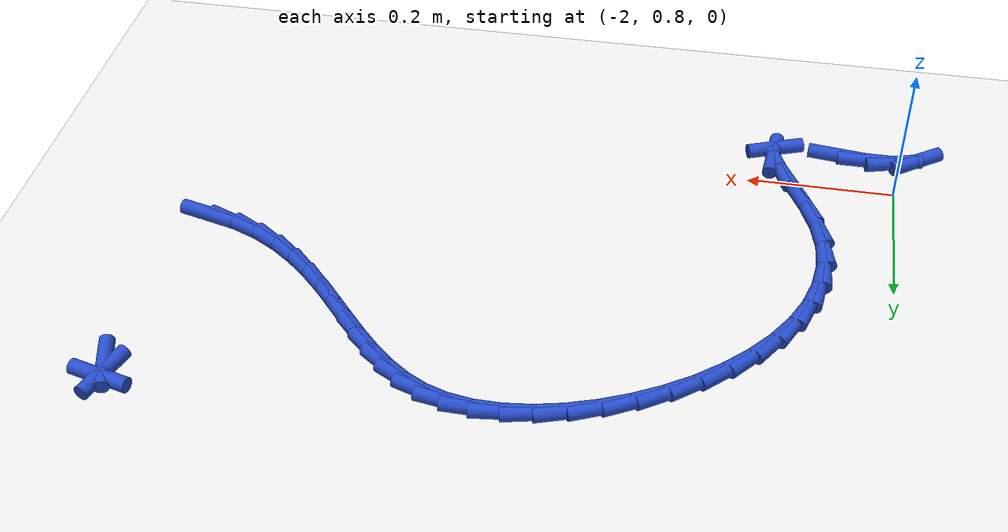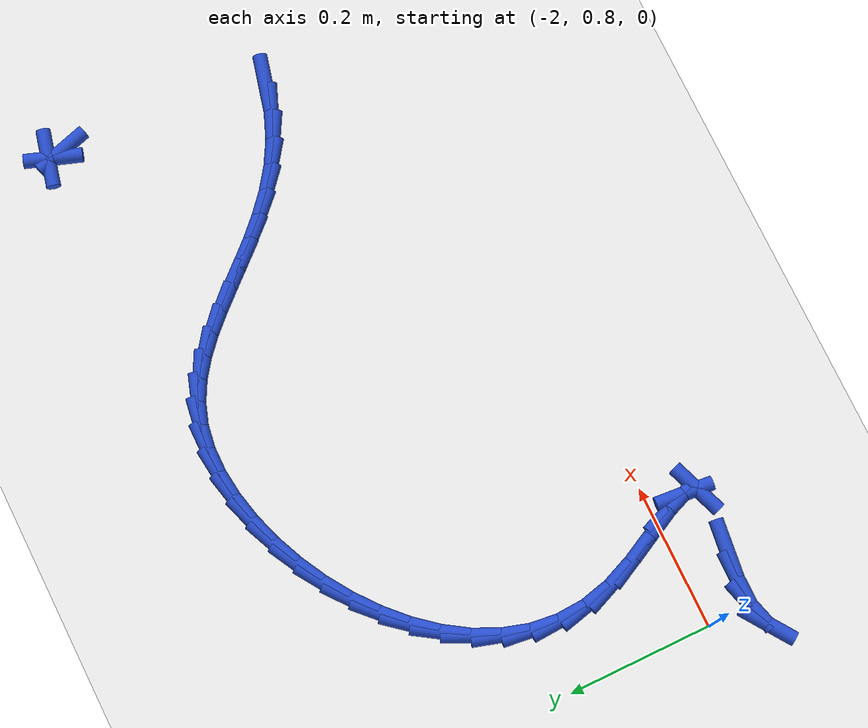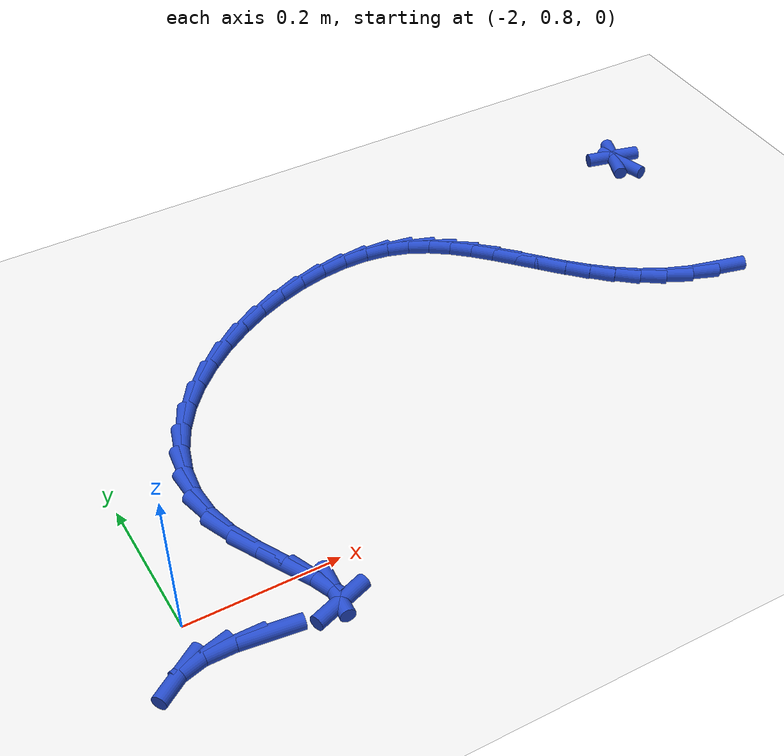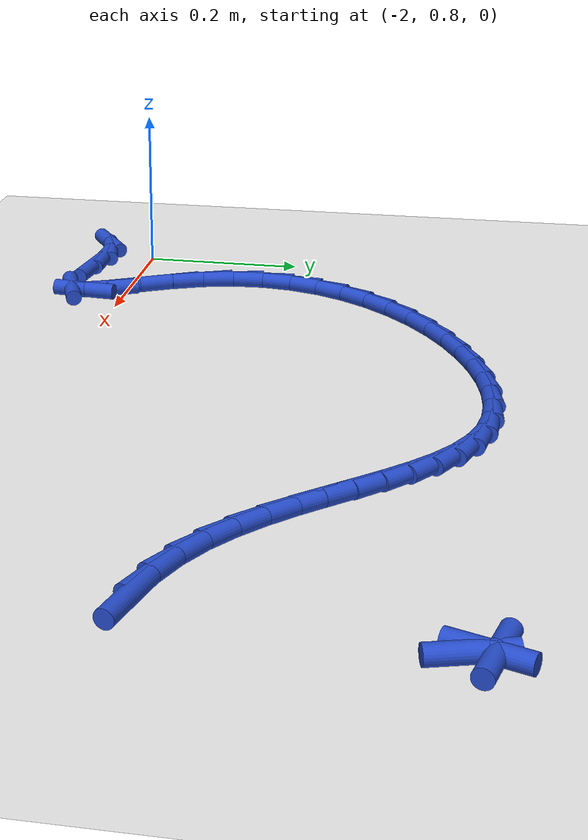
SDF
<sdf version="1.6">
 <world name="default">
  <model name="ground_plane">
   <static>1</static>
   <link name="link">
    <collision name="collision">
     <geometry><plane><normal>0 0 1</normal><size>100 100</size></plane></geometry>
     <surface><friction><ode><mu>100</mu><mu2>50</mu2></ode></friction></surface>
    </collision>
    <visual name="visual">
     <cast_shadows>0</cast_shadows>
     <geometry><plane><normal>0 0 1</normal><size>100 100</size></plane></geometry>
     <material>
      <script><uri>file://media/materials/scripts/gazebo.material</uri><name>Gazebo/WhiteGlow</name></script>
     </material>
    </visual>
   </link>
  </model>
  <model name="line">
   <link name="link_52">
    <pose>-1.0542694478184942 1.2919061636546518 0.01 0 1.57 -1.2856263800954082</pose>
    <collision name="collision">
     <geometry><cylinder><radius>0.01</radius><length>0.08</length></cylinder></geometry>
    </collision>
    <visual name="visual">
     <material>
      <script><name>Gazebo/Blue</name><uri>file://media/materials/scripts/gazebo.material</uri></script>
     </material>
     <geometry><cylinder><radius>0.01</radius><length>0.08</length></cylinder></geometry>
    </visual>
   </link>
   <link name="link_53">
    <pose>-1.0583603405042403 1.3058606275869478 0.01 0 1.57 1.238142314369494</pose>
    <collision name="collision">
     <geometry><cylinder><radius>0.01</radius><length>0.08</length></cylinder></geometry>
    </collision>
    <visual name="visual">
     <material>
      <script><name>Gazebo/Blue</name><uri>file://media/materials/scripts/gazebo.material</uri></script>
     </material>
     <geometry><cylinder><radius>0.01</radius><length>0.08</length></cylinder></geometry>
    </visual>
   </link>
   <link name="link_54">
    <pose>-1.0561419411248767 1.3122815959414038 0.01 0 1.57 -0.24299462795347448</pose>
    <collision name="collision">
     <geometry><cylinder><radius>0.01</radius><length>0.08</length></cylinder></geometry>
    </collision>
    <visual name="visual">
     <material>
      <script><name>Gazebo/Blue</name><uri>file://media/materials/scripts/gazebo.material</uri></script>
     </material>
     <geometry><cylinder><radius>0.01</radius><length>0.08</length></cylinder></geometry>
    </visual>
   </link>
   <link name="link_70">
    <pose>-1.0885000211217233 1.0052487129784953 0.01 0 1.57 -0.2482110267522975</pose>
    <collision name="collision">
     <geometry><cylinder><radius>0.01</radius><length>0.08</length></cylinder></geometry>
    </collision>
    <visual name="visual">
     <material>
      <script><name>Gazebo/Blue</name><uri>file://media/materials/scripts/gazebo.material</uri></script>
     </material>
     <geometry><cylinder><radius>0.01</radius><length>0.08</length></cylinder></geometry>
    </visual>
   </link>
   <link name="link_71">
    <pose>-1.1281726500950469 1.015303232024965 0.01 0 1.57 -0.3822972875821599</pose>
    <collision name="collision">
     <geometry><cylinder><radius>0.01</radius><length>0.08</length></cylinder></geometry>
    </collision>
    <visual name="visual">
     <material>
      <script><name>Gazebo/Blue</name><uri>file://media/materials/scripts/gazebo.material</uri></script>
     </material>
     <geometry><cylinder><radius>0.01</radius><length>0.08</length></cylinder></geometry>
    </visual>
   </link>
   <link name="link_72">
    <pose>-1.1641147867218438 1.0297548084962052 0.01 0 1.57 -0.5119892710026104</pose>
    <collision name="collision">
     <geometry><cylinder><radius>0.01</radius><length>0.08</length></cylinder></geometry>
    </collision>
    <visual name="visual">
     <material>
      <script><name>Gazebo/Blue</name><uri>file://media/materials/scripts/gazebo.material</uri></script>
     </material>
     <geometry><cylinder><radius>0.01</radius><length>0.08</length></cylinder></geometry>
    </visual>
   </link>
   <link name="link_73">
    <pose>-1.1964607025708682 1.0479323497882465 0.01 0 1.57 -0.6253092240364163</pose>
    <collision name="collision">
     <geometry><cylinder><radius>0.01</radius><length>0.08</length></cylinder></geometry>
    </collision>
    <visual name="visual">
     <material>
      <script><name>Gazebo/Blue</name><uri>file://media/materials/scripts/gazebo.material</uri></script>
     </material>
     <geometry><cylinder><radius>0.01</radius><length>0.08</length></cylinder></geometry>
    </visual>
   </link>
   <link name="link_74">
    <pose>-1.225771760342248 1.0690936066867371 0.01 0 1.57 -0.7171361642608705</pose>
    <collision name="collision">
     <geometry><cylinder><radius>0.01</radius><length>0.08</length></cylinder></geometry>
    </collision>
    <visual name="visual">
     <material>
      <script><name>Gazebo/Blue</name><uri>file://media/materials/scripts/gazebo.material</uri></script>
     </material>
     <geometry><cylinder><radius>0.01</radius><length>0.08</length></cylinder></geometry>
    </visual>
   </link>
   <link name="link_75">
    <pose>-1.25260932273611 1.0924963299773243 0.01 0 1.57 -0.7849267508723177</pose>
    <collision name="collision">
     <geometry><cylinder><radius>0.01</radius><length>0.08</length></cylinder></geometry>
    </collision>
    <visual name="visual">
     <material>
      <script><name>Gazebo/Blue</name><uri>file://media/materials/scripts/gazebo.material</uri></script>
     </material>
     <geometry><cylinder><radius>0.01</radius><length>0.08</length></cylinder></geometry>
    </visual>
   </link>
   <link name="link_76">
    <pose>-1.2775347524525806 1.1173982704456555 0.01 0 1.57 -0.8277067956092622</pose>
    <collision name="collision">
     <geometry><cylinder><radius>0.01</radius><length>0.08</length></cylinder></geometry>
    </collision>
    <visual name="visual">
     <material>
      <script><name>Gazebo/Blue</name><uri>file://media/materials/scripts/gazebo.material</uri></script>
     </material>
     <geometry><cylinder><radius>0.01</radius><length>0.08</length></cylinder></geometry>
    </visual>
   </link>
   <link name="link_77">
    <pose>-1.3011094121917877 1.1430571788773782 0.01 0 1.57 -0.8449323806353404</pose>
    <collision name="collision">
     <geometry><cylinder><radius>0.01</radius><length>0.08</length></cylinder></geometry>
    </collision>
    <visual name="visual">
     <material>
      <script><name>Gazebo/Blue</name><uri>file://media/materials/scripts/gazebo.material</uri></script>
     </material>
     <geometry><cylinder><radius>0.01</radius><length>0.08</length></cylinder></geometry>
    </visual>
   </link>
   <link name="link_78">
    <pose>-1.3238946646538583 1.16873080605814 0.01 0 1.57 -0.8356447323193349</pose>
    <collision name="collision">
     <geometry><cylinder><radius>0.01</radius><length>0.08</length></cylinder></geometry>
    </collision>
    <visual name="visual">
     <material>
      <script><name>Gazebo/Blue</name><uri>file://media/materials/scripts/gazebo.material</uri></script>
     </material>
     <geometry><cylinder><radius>0.01</radius><length>0.08</length></cylinder></geometry>
    </visual>
   </link>
   <link name="link_79">
    <pose>-1.3464518725389194 1.193676902773588 0.01 0 1.57 -0.7980313259196378</pose>
    <collision name="collision">
     <geometry><cylinder><radius>0.01</radius><length>0.08</length></cylinder></geometry>
    </collision>
    <visual name="visual">
     <material>
      <script><name>Gazebo/Blue</name><uri>file://media/materials/scripts/gazebo.material</uri></script>
     </material>
     <geometry><cylinder><radius>0.01</radius><length>0.08</length></cylinder></geometry>
    </visual>
   </link>
   <link name="link_80">
    <pose>-1.369342398547098 1.2171532198093704 0.01 0 1.57 -0.7294975968443765</pose>
    <collision name="collision">
     <geometry><cylinder><radius>0.01</radius><length>0.08</length></cylinder></geometry>
    </collision>
    <visual name="visual">
     <material>
      <script><name>Gazebo/Blue</name><uri>file://media/materials/scripts/gazebo.material</uri></script>
     </material>
     <geometry><cylinder><radius>0.01</radius><length>0.08</length></cylinder></geometry>
    </visual>
   </link>
   <link name="link_81">
    <pose>-1.393127605378521 1.2384175079511337 0.01 0 1.57 -0.6275705124526488</pose>
    <collision name="collision">
     <geometry><cylinder><radius>0.01</radius><length>0.08</length></cylinder></geometry>
    </collision>
    <visual name="visual">
     <material>
      <script><name>Gazebo/Blue</name><uri>file://media/materials/scripts/gazebo.material</uri></script>
     </material>
     <geometry><cylinder><radius>0.01</radius><length>0.08</length></cylinder></geometry>
    </visual>
   </link>
   <link name="link_82">
    <pose>-1.4183688557333165 1.2567275179845263 0.01 0 1.57 -0.49211216224122334</pose>
    <collision name="collision">
     <geometry><cylinder><radius>0.01</radius><length>0.08</length></cylinder></geometry>
    </collision>
    <visual name="visual">
     <material>
      <script><name>Gazebo/Blue</name><uri>file://media/materials/scripts/gazebo.material</uri></script>
     </material>
     <geometry><cylinder><radius>0.01</radius><length>0.08</length></cylinder></geometry>
    </visual>
   </link>
   <link name="link_83">
    <pose>-1.4456275123116111 1.271341000695195 0.01 0 1.57 -0.32864731974328726</pose>
    <collision name="collision">
     <geometry><cylinder><radius>0.01</radius><length>0.08</length></cylinder></geometry>
    </collision>
    <visual name="visual">
     <material>
      <script><name>Gazebo/Blue</name><uri>file://media/materials/scripts/gazebo.material</uri></script>
     </material>
     <geometry><cylinder><radius>0.01</radius><length>0.08</length></cylinder></geometry>
    </visual>
   </link>
   <link name="link_84">
    <pose>-1.4754646967463991 1.2815159038398565 0.01 0 1.57 -0.15827107035254795</pose>
    <collision name="collision">
     <geometry><cylinder><radius>0.01</radius><length>0.08</length></cylinder></geometry>
    </collision>
    <visual name="visual">
     <material>
      <script><name>Gazebo/Blue</name><uri>file://media/materials/scripts/gazebo.material</uri></script>
     </material>
     <geometry><cylinder><radius>0.01</radius><length>0.08</length></cylinder></geometry>
    </visual>
   </link>
   <link name="link_85">
    <pose>-1.5081660796076852 1.286735240656524 0.01 0 1.57 -0.011544589115216462</pose>
    <collision name="collision">
     <geometry><cylinder><radius>0.01</radius><length>0.08</length></cylinder></geometry>
    </collision>
    <visual name="visual">
     <material>
      <script><name>Gazebo/Blue</name><uri>file://media/materials/scripts/gazebo.material</uri></script>
     </material>
     <geometry><cylinder><radius>0.01</radius><length>0.08</length></cylinder></geometry>
    </visual>
   </link>
   <link name="link_86">
    <pose>-1.5432122353537963 1.2871398521000461 0.01 0 1.57 0.11251674956214293</pose>
    <collision name="collision">
     <geometry><cylinder><radius>0.01</radius><length>0.08</length></cylinder></geometry>
    </collision>
    <visual name="visual">
     <material>
      <script><name>Gazebo/Blue</name><uri>file://media/materials/scripts/gazebo.material</uri></script>
     </material>
     <geometry><cylinder><radius>0.01</radius><length>0.08</length></cylinder></geometry>
    </visual>
   </link>
   <link name="link_87">
    <pose>-1.579937428418122 1.2829901260815368 0.01 0 1.57 0.22011646677106772</pose>
    <collision name="collision">
     <geometry><cylinder><radius>0.01</radius><length>0.08</length></cylinder></geometry>
    </collision>
    <visual name="visual">
     <material>
      <script><name>Gazebo/Blue</name><uri>file://media/materials/scripts/gazebo.material</uri></script>
     </material>
     <geometry><cylinder><radius>0.01</radius><length>0.08</length></cylinder></geometry>
    </visual>
   </link>
   <link name="link_88">
    <pose>-1.617675923234053 1.2745464505121102 0.01 0 1.57 0.31658748666275205</pose>
    <collision name="collision">
     <geometry><cylinder><radius>0.01</radius><length>0.08</length></cylinder></geometry>
    </collision>
    <visual name="visual">
     <material>
      <script><name>Gazebo/Blue</name><uri>file://media/materials/scripts/gazebo.material</uri></script>
     </material>
     <geometry><cylinder><radius>0.01</radius><length>0.08</length></cylinder></geometry>
    </visual>
   </link>
   <link name="link_89">
    <pose>-1.6557619842349802 1.2620692133028801 0.01 0 1.57 0.40632635485857166</pose>
    <collision name="collision">
     <geometry><cylinder><radius>0.01</radius><length>0.08</length></cylinder></geometry>
    </collision>
    <visual name="visual">
     <material>
      <script><name>Gazebo/Blue</name><uri>file://media/materials/scripts/gazebo.material</uri></script>
     </material>
     <geometry><cylinder><radius>0.01</radius><length>0.08</length></cylinder></geometry>
    </visual>
   </link>
   <link name="link_90">
    <pose>-1.6935298758542943 1.245818802364961 0.01 0 1.57 0.49302276827547603</pose>
    <collision name="collision">
     <geometry><cylinder><radius>0.01</radius><length>0.08</length></cylinder></geometry>
    </collision>
    <visual name="visual">
     <material>
      <script><name>Gazebo/Blue</name><uri>file://media/materials/scripts/gazebo.material</uri></script>
     </material>
     <geometry><cylinder><radius>0.01</radius><length>0.08</length></cylinder></geometry>
    </visual>
   </link>
   <link name="link_91">
    <pose>-1.7303138625253864 1.2260556056094667 0.01 0 1.57 0.5799338741252384</pose>
    <collision name="collision">
     <geometry><cylinder><radius>0.01</radius><length>0.08</length></cylinder></geometry>
    </collision>
    <visual name="visual">
     <material>
      <script><name>Gazebo/Blue</name><uri>file://media/materials/scripts/gazebo.material</uri></script>
     </material>
     <geometry><cylinder><radius>0.01</radius><length>0.08</length></cylinder></geometry>
    </visual>
   </link>
   <link name="link_92">
    <pose>-1.7654482086816468 1.2030400109475112 0.01 0 1.57 0.6701242635236726</pose>
    <collision name="collision">
     <geometry><cylinder><radius>0.01</radius><length>0.08</length></cylinder></geometry>
    </collision>
    <visual name="visual">
     <material>
      <script><name>Gazebo/Blue</name><uri>file://media/materials/scripts/gazebo.material</uri></script>
     </material>
     <geometry><cylinder><radius>0.01</radius><length>0.08</length></cylinder></geometry>
    </visual>
   </link>
   <link name="link_93">
    <pose>-1.7982671787564655 1.1770324062902096 0.01 0 1.57 0.7666450470489968</pose>
    <collision name="collision">
     <geometry><cylinder><radius>0.01</radius><length>0.08</length></cylinder></geometry>
    </collision>
    <visual name="visual">
     <material>
      <script><name>Gazebo/Blue</name><uri>file://media/materials/scripts/gazebo.material</uri></script>
     </material>
     <geometry><cylinder><radius>0.01</radius><length>0.08</length></cylinder></geometry>
    </visual>
   </link>
   <link name="link_94">
    <pose>-1.8281050371832348 1.1482931795486748 0.01 0 1.57 0.8726209131466792</pose>
    <collision name="collision">
     <geometry><cylinder><radius>0.01</radius><length>0.08</length></cylinder></geometry>
    </collision>
    <visual name="visual">
     <material>
      <script><name>Gazebo/Blue</name><uri>file://media/materials/scripts/gazebo.material</uri></script>
     </material>
     <geometry><cylinder><radius>0.01</radius><length>0.08</length></cylinder></geometry>
    </visual>
   </link>
   <link name="link_95">
    <pose>-1.8542960483953443 1.117082718634022 0.01 0 1.57 0.9911765468494342</pose>
    <collision name="collision">
     <geometry><cylinder><radius>0.01</radius><length>0.08</length></cylinder></geometry>
    </collision>
    <visual name="visual">
     <material>
      <script><name>Gazebo/Blue</name><uri>file://media/materials/scripts/gazebo.material</uri></script>
     </material>
     <geometry><cylinder><radius>0.01</radius><length>0.08</length></cylinder></geometry>
    </visual>
   </link>
   <link name="link_96">
    <pose>-1.876174476826184 1.0836614114573646 0.01 0 1.57 1.1250778789288784</pose>
    <collision name="collision">
     <geometry><cylinder><radius>0.01</radius><length>0.08</length></cylinder></geometry>
    </collision>
    <visual name="visual">
     <material>
      <script><name>Gazebo/Blue</name><uri>file://media/materials/scripts/gazebo.material</uri></script>
     </material>
     <geometry><cylinder><radius>0.01</radius><length>0.08</length></cylinder></geometry>
    </visual>
   </link>
   <link name="link_97">
    <pose>-1.8930745869091465 1.0482896459298172 0.01 0 1.57 1.2759392002402123</pose>
    <collision name="collision">
     <geometry><cylinder><radius>0.01</radius><length>0.08</length></cylinder></geometry>
    </collision>
    <visual name="visual">
     <material>
      <script><name>Gazebo/Blue</name><uri>file://media/materials/scripts/gazebo.material</uri></script>
     </material>
     <geometry><cylinder><radius>0.01</radius><length>0.08</length></cylinder></geometry>
    </visual>
   </link>
   <link name="link_98">
    <pose>-1.9043306430776215 1.0112278099624936 0.01 0 1.57 1.4429939524366753</pose>
    <collision name="collision">
     <geometry><cylinder><radius>0.01</radius><length>0.08</length></cylinder></geometry>
    </collision>
    <visual name="visual">
     <material>
      <script><name>Gazebo/Blue</name><uri>file://media/materials/scripts/gazebo.material</uri></script>
     </material>
     <geometry><cylinder><radius>0.01</radius><length>0.08</length></cylinder></geometry>
    </visual>
   </link>
   <link name="link_99">
    <pose>-1.909276909764999 0.9727362914665074 0.01 0 1.57 -1.5196755810153033</pose>
    <collision name="collision">
     <geometry><cylinder><radius>0.01</radius><length>0.08</length></cylinder></geometry>
    </collision>
    <visual name="visual">
     <material>
      <script><name>Gazebo/Blue</name><uri>file://media/materials/scripts/gazebo.material</uri></script>
     </material>
     <geometry><cylinder><radius>0.01</radius><length>0.08</length></cylinder></geometry>
    </visual>
   </link>
   <link name="link_100">
    <pose>-1.9072476514046706 0.933075478352974 0.01 0 1.57 -1.3367968789407314</pose>
    <collision name="collision">
     <geometry><cylinder><radius>0.01</radius><length>0.08</length></cylinder></geometry>
    </collision>
    <visual name="visual">
     <material>
      <script><name>Gazebo/Blue</name><uri>file://media/materials/scripts/gazebo.material</uri></script>
     </material>
     <geometry><cylinder><radius>0.01</radius><length>0.08</length></cylinder></geometry>
    </visual>
   </link>
   <link name="link_101">
    <pose>-1.8975772153934296 0.8925057913400672 0.01 0 1.57 -1.178196642931788</pose>
    <collision name="collision">
     <geometry><cylinder><radius>0.01</radius><length>0.08</length></cylinder></geometry>
    </collision>
    <visual name="visual">
     <material>
      <script><name>Gazebo/Blue</name><uri>file://media/materials/scripts/gazebo.material</uri></script>
     </material>
     <geometry><cylinder><radius>0.01</radius><length>0.08</length></cylinder></geometry>
    </visual>
   </link>
   <link name="link_102">
    <pose>-1.8806868896258846 0.8517174710618585 0.01 0 1.57 -1.097393142828479</pose>
    <collision name="collision">
     <geometry><cylinder><radius>0.01</radius><length>0.08</length></cylinder></geometry>
    </collision>
    <visual name="visual">
     <material>
      <script><name>Gazebo/Blue</name><uri>file://media/materials/scripts/gazebo.material</uri></script>
     </material>
     <geometry><cylinder><radius>0.01</radius><length>0.08</length></cylinder></geometry>
    </visual>
   </link>
   <link name="link_103">
    <pose>-1.8608058067159037 0.8129065328477847 0.01 0 1.57 -1.0919846308844898</pose>
    <collision name="collision">
     <geometry><cylinder><radius>0.01</radius><length>0.08</length></cylinder></geometry>
    </collision>
    <visual name="visual">
     <material>
      <script><name>Gazebo/Blue</name><uri>file://media/materials/scripts/gazebo.material</uri></script>
     </material>
     <geometry><cylinder><radius>0.01</radius><length>0.08</length></cylinder></geometry>
    </visual>
   </link>
   <link name="link_104">
    <pose>-1.8429964822360807 0.7785985451113286 0.01 0 1.57 -1.1977934822368042</pose>
    <collision name="collision">
     <geometry><cylinder><radius>0.01</radius><length>0.08</length></cylinder></geometry>
    </collision>
    <visual name="visual">
     <material>
      <script><name>Gazebo/Blue</name><uri>file://media/materials/scripts/gazebo.material</uri></script>
     </material>
     <geometry><cylinder><radius>0.01</radius><length>0.08</length></cylinder></geometry>
    </visual>
   </link>
   <link name="link_105">
    <pose>-1.832321431759011 0.7513190762659729 0.01 0 1.57 1.4851554649387988</pose>
    <collision name="collision">
     <geometry><cylinder><radius>0.01</radius><length>0.08</length></cylinder></geometry>
    </collision>
    <visual name="visual">
     <material>
      <script><name>Gazebo/Blue</name><uri>file://media/materials/scripts/gazebo.material</uri></script>
     </material>
     <geometry><cylinder><radius>0.01</radius><length>0.08</length></cylinder></geometry>
    </visual>
   </link>
   <link name="link_106">
    <pose>-1.8338431708572898 0.7335936947252008 0.01 0 1.57 0.3521059383891083</pose>
    <collision name="collision">
     <geometry><cylinder><radius>0.01</radius><length>0.08</length></cylinder></geometry>
    </collision>
    <visual name="visual">
     <material>
      <script><name>Gazebo/Blue</name><uri>file://media/materials/scripts/gazebo.material</uri></script>
     </material>
     <geometry><cylinder><radius>0.01</radius><length>0.08</length></cylinder></geometry>
    </visual>
   </link>
   <link name="link_109">
    <pose>-1.920594711940402 0.734836669598058 0.01 0 1.57 -0.12500388885251</pose>
    <collision name="collision">
     <geometry><cylinder><radius>0.01</radius><length>0.08</length></cylinder></geometry>
    </collision>
    <visual name="visual">
     <material>
      <script><name>Gazebo/Blue</name><uri>file://media/materials/scripts/gazebo.material</uri></script>
     </material>
     <geometry><cylinder><radius>0.01</radius><length>0.08</length></cylinder></geometry>
    </visual>
   </link>
   <link name="link_110">
    <pose>-1.961519582165389 0.7399792514192273 0.01 0 1.57 0.00025224993161866027</pose>
    <collision name="collision">
     <geometry><cylinder><radius>0.01</radius><length>0.08</length></cylinder></geometry>
    </collision>
    <visual name="visual">
     <material>
      <script><name>Gazebo/Blue</name><uri>file://media/materials/scripts/gazebo.material</uri></script>
     </material>
     <geometry><cylinder><radius>0.01</radius><length>0.08</length></cylinder></geometry>
    </visual>
   </link>
   <link name="link_111">
    <pose>-1.9995564382175668 0.7399696566246856 0.01 0 1.57 0.26998239131425694</pose>
    <collision name="collision">
     <geometry><cylinder><radius>0.01</radius><length>0.08</length></cylinder></geometry>
    </collision>
    <visual name="visual">
     <material>
      <script><name>Gazebo/Blue</name><uri>file://media/materials/scripts/gazebo.material</uri></script>
     </material>
     <geometry><cylinder><radius>0.01</radius><length>0.08</length></cylinder></geometry>
    </visual>
   </link>
   <link name="link_112">
    <pose>-2.0305937158976324 0.7313804258952862 0.01 0 1.57 0.6030698087585101</pose>
    <collision name="collision">
     <geometry><cylinder><radius>0.01</radius><length>0.08</length></cylinder></geometry>
    </collision>
    <visual name="visual">
     <material>
      <script><name>Gazebo/Blue</name><uri>file://media/materials/scripts/gazebo.material</uri></script>
     </material>
     <geometry><cylinder><radius>0.01</radius><length>0.08</length></cylinder></geometry>
    </visual>
   </link>
  </model>
 </world>
</sdf>
